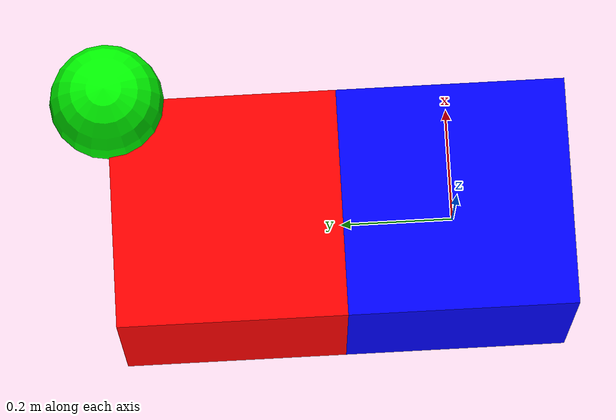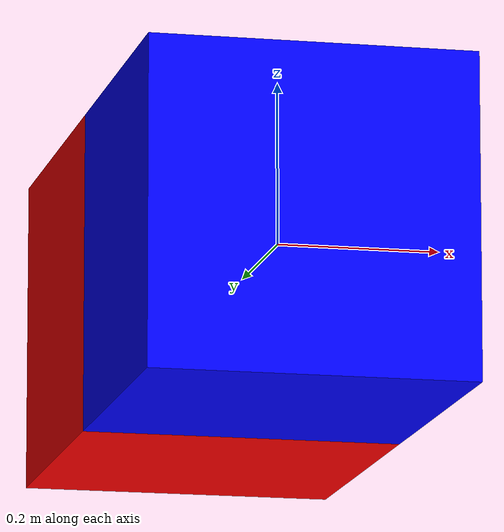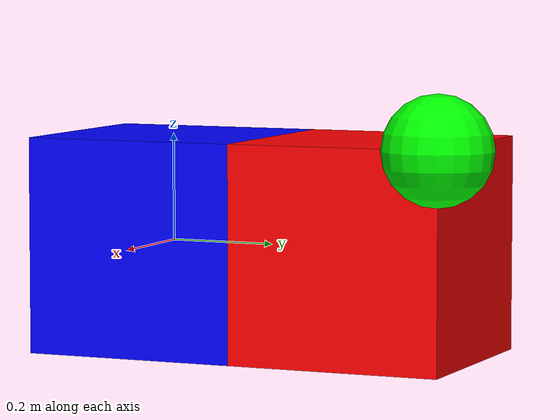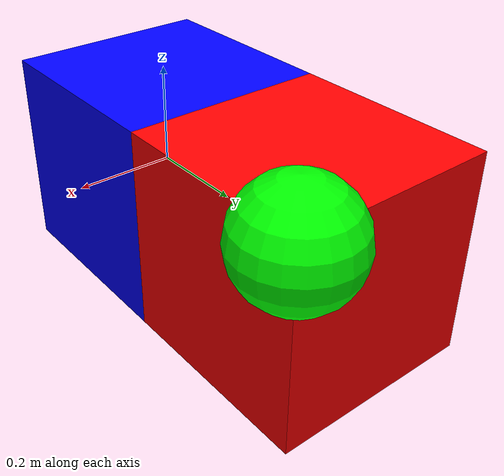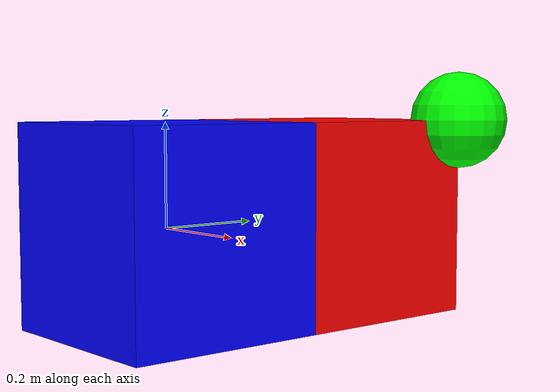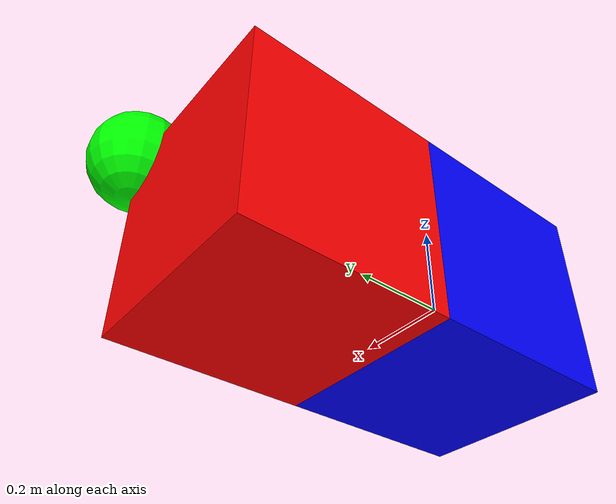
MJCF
<!-- 该xml文件确实验证了joint连接的是当前body和其parent body，而不是当前body和其child body。 -->
<mujoco>
  <worldbody>
    <light name="top" pos="0 0 1"/>
    <body name="test">
      <geom name="blue_bos" type="box" size=".2 .2 .2" rgba="0 0 1 1"/>
        <joint name="swing" type="hinge" axis="0 1 0"  pos="0 .2 .2"/>

      <body name="box_and_sphere"  pos="0 .4 0">
        <geom name="red_box" type="box" size=".2 .2 .2" rgba="1 0 0 1"/>
        <geom name="green_sphere" pos=".2 .2 .2" size=".1" rgba="0 1 0 1"/>
      </body>
    </body>
  </worldbody>
</mujoco>
